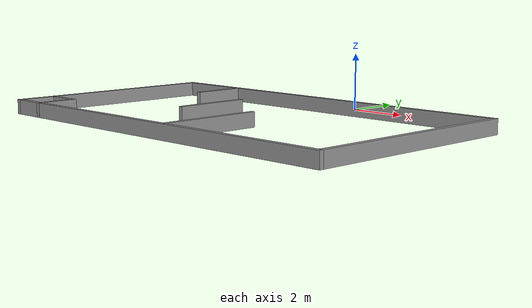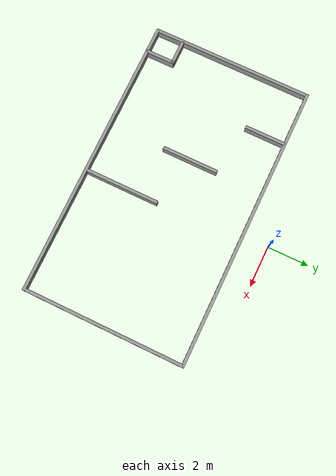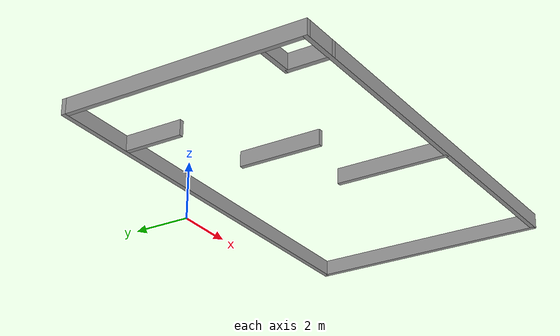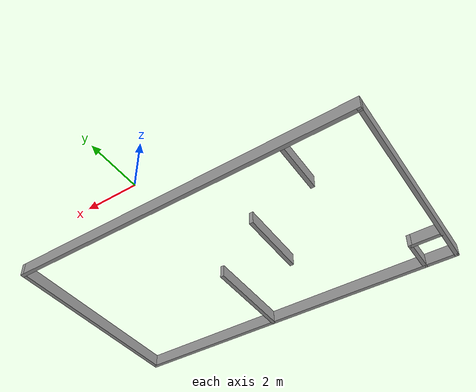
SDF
<?xml version='1.0'?>
<sdf version='1.7'>
  <model name='test_room'>
    <pose>-0.425 -4.598 0 0 -0 0</pose>
    <link name='Wall_0'>
      <collision name='Wall_0_Collision'>
        <geometry>
          <box>
            <size>14 0.15 0.5</size>
          </box>
        </geometry>
        <pose>0 0 0.25 0 -0 0</pose>
      </collision>
      <visual name='Wall_0_Visual'>
        <pose>0 0 0.25 0 -0 0</pose>
        <geometry>
          <box>
            <size>14 0.15 0.5</size>
          </box>
        </geometry>
        <material>
          <script>
            <uri>file://media/materials/scripts/gazebo.material</uri>
            <name>Gazebo/Grey</name>
          </script>
          <ambient>1 1 1 1</ambient>
        </material>
        <meta>
          <layer>0</layer>
        </meta>
      </visual>
      <pose>-0 3.328 0 0 -0 3.14159</pose>
    </link>
    <link name='Wall_1'>
      <collision name='Wall_1_Collision'>
        <geometry>
          <box>
            <size>8 0.15 0.5</size>
          </box>
        </geometry>
        <pose>0 0 0.25 0 -0 0</pose>
      </collision>
      <visual name='Wall_1_Visual'>
        <pose>0 0 0.25 0 -0 0</pose>
        <geometry>
          <box>
            <size>8 0.15 0.5</size>
          </box>
        </geometry>
        <material>
          <script>
            <uri>file://media/materials/scripts/gazebo.material</uri>
            <name>Gazebo/Grey</name>
          </script>
          <ambient>1 1 1 1</ambient>
        </material>
        <meta>
          <layer>0</layer>
        </meta>
      </visual>
      <pose>-6.925 -0.597 0 0 -0 -1.5708</pose>
    </link>
    <link name='Wall_12'>
      <collision name='Wall_12_Collision'>
        <geometry>
          <box>
            <size>2.75 0.15 0.5</size>
          </box>
        </geometry>
        <pose>0 0 0.25 0 -0 0</pose>
      </collision>
      <visual name='Wall_12_Visual'>
        <pose>0 0 0.25 0 -0 0</pose>
        <geometry>
          <box>
            <size>2.75 0.15 0.5</size>
          </box>
        </geometry>
        <material>
          <script>
            <uri>file://media/materials/scripts/gazebo.material</uri>
            <name>Gazebo/Grey</name>
          </script>
          <ambient>1 1 1 1</ambient>
        </material>
        <meta>
          <layer>0</layer>
        </meta>
      </visual>
      <pose>-1.7 -0.356 0 0 -0 1.5708</pose>
    </link>
    <link name='Wall_15'>
      <collision name='Wall_15_Collision'>
        <geometry>
          <box>
            <size>1.25 0.15 0.5</size>
          </box>
        </geometry>
        <pose>0 0 0.25 0 -0 0</pose>
      </collision>
      <visual name='Wall_15_Visual'>
        <pose>0 0 0.25 0 -0 0</pose>
        <geometry>
          <box>
            <size>1.25 0.15 0.5</size>
          </box>
        </geometry>
        <material>
          <script>
            <uri>file://media/materials/scripts/gazebo.material</uri>
            <name>Gazebo/Grey</name>
          </script>
          <ambient>1 1 1 1</ambient>
        </material>
        <meta>
          <layer>0</layer>
        </meta>
      </visual>
      <pose>-6.28 -3.173 0 0 -0 0</pose>
    </link>
    <link name='Wall_16'>
      <collision name='Wall_16_Collision'>
        <geometry>
          <box>
            <size>1.5 0.15 0.5</size>
          </box>
        </geometry>
        <pose>0 0 0.25 0 -0 0</pose>
      </collision>
      <visual name='Wall_16_Visual'>
        <pose>0 0 0.25 0 -0 0</pose>
        <geometry>
          <box>
            <size>1.5 0.15 0.5</size>
          </box>
        </geometry>
        <material>
          <script>
            <uri>file://media/materials/scripts/gazebo.material</uri>
            <name>Gazebo/Grey</name>
          </script>
          <ambient>1 1 1 1</ambient>
        </material>
        <meta>
          <layer>0</layer>
        </meta>
      </visual>
      <pose>-5.73 -3.848 0 0 -0 -1.5708</pose>
    </link>
    <link name='Wall_18'>
      <collision name='Wall_18_Collision'>
        <geometry>
          <box>
            <size>3.75 0.15 0.5</size>
          </box>
        </geometry>
        <pose>0 0 0.25 0 -0 0</pose>
      </collision>
      <visual name='Wall_18_Visual'>
        <pose>0 0 0.25 0 -0 0</pose>
        <geometry>
          <box>
            <size>3.75 0.15 0.5</size>
          </box>
        </geometry>
        <material>
          <script>
            <uri>file://media/materials/scripts/gazebo.material</uri>
            <name>Gazebo/Grey</name>
          </script>
          <ambient>1 1 1 1</ambient>
        </material>
        <meta>
          <layer>0</layer>
        </meta>
      </visual>
      <pose>0.800091 -2.71726 0 0 -0 -1.5708</pose>
    </link>
    <link name='Wall_3'>
      <collision name='Wall_3_Collision'>
        <geometry>
          <box>
            <size>8 0.15 0.5</size>
          </box>
        </geometry>
        <pose>0 0 0.25 0 -0 0</pose>
      </collision>
      <visual name='Wall_3_Visual'>
        <pose>0 0 0.25 0 -0 0</pose>
        <geometry>
          <box>
            <size>8 0.15 0.5</size>
          </box>
        </geometry>
        <material>
          <script>
            <uri>file://media/materials/scripts/gazebo.material</uri>
            <name>Gazebo/Grey</name>
          </script>
          <ambient>1 1 1 1</ambient>
        </material>
        <meta>
          <layer>0</layer>
        </meta>
      </visual>
      <pose>6.925 -0.597 0 0 -0 -1.5708</pose>
    </link>
    <link name='Wall_4'>
      <collision name='Wall_4_Collision'>
        <geometry>
          <box>
            <size>14 0.15 0.5</size>
          </box>
        </geometry>
        <pose>0 0 0.25 0 -0 0</pose>
      </collision>
      <visual name='Wall_4_Visual'>
        <pose>0 0 0.25 0 -0 0</pose>
        <geometry>
          <box>
            <size>14 0.15 0.5</size>
          </box>
        </geometry>
        <material>
          <script>
            <uri>file://media/materials/scripts/gazebo.material</uri>
            <name>Gazebo/Grey</name>
          </script>
          <ambient>1 1 1 1</ambient>
        </material>
        <meta>
          <layer>0</layer>
        </meta>
      </visual>
      <pose>-0 -4.522 0 0 -0 3.14159</pose>
    </link>
    <link name='Wall_6'>
      <collision name='Wall_6_Collision'>
        <geometry>
          <box>
            <size>2 0.15 0.5</size>
          </box>
        </geometry>
        <pose>0 0 0.25 0 -0 0</pose>
      </collision>
      <visual name='Wall_6_Visual'>
        <pose>0 0 0.25 0 -0 0</pose>
        <geometry>
          <box>
            <size>2 0.15 0.5</size>
          </box>
        </geometry>
        <material>
          <script>
            <uri>file://media/materials/scripts/gazebo.material</uri>
            <name>Gazebo/Grey</name>
          </script>
          <ambient>1 1 1 1</ambient>
        </material>
        <meta>
          <layer>0</layer>
        </meta>
      </visual>
      <pose>-4.271 2.322 0 0 -0 -1.5708</pose>
    </link>
    <static>1</static>
  </model>
</sdf>
